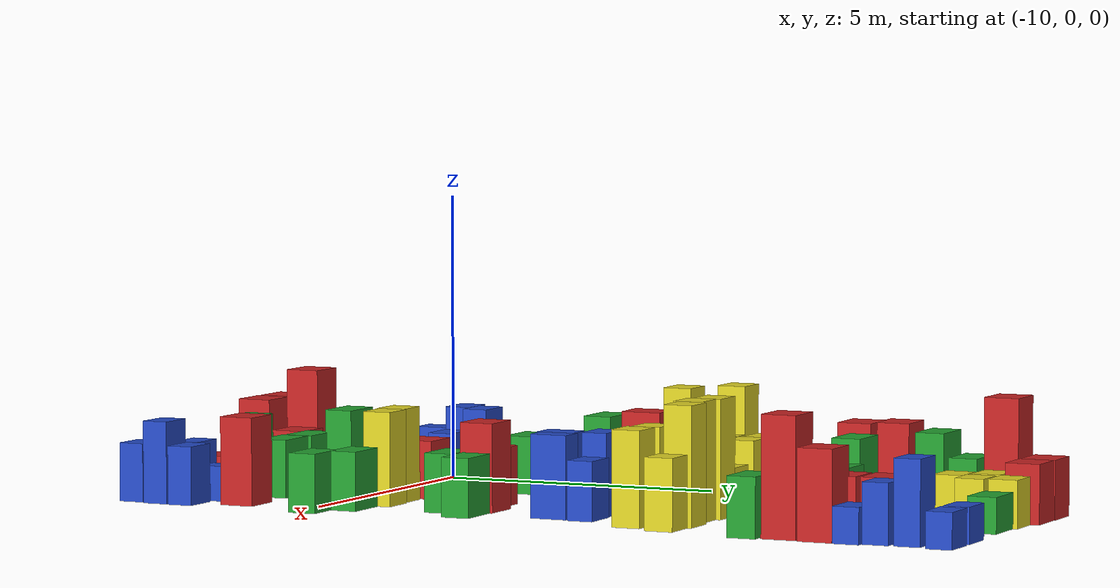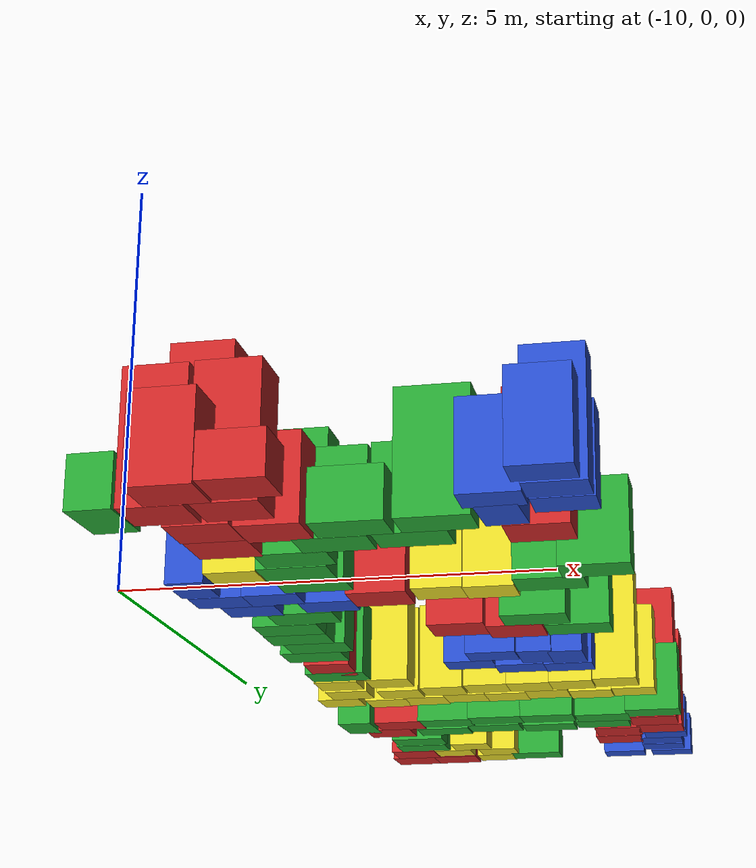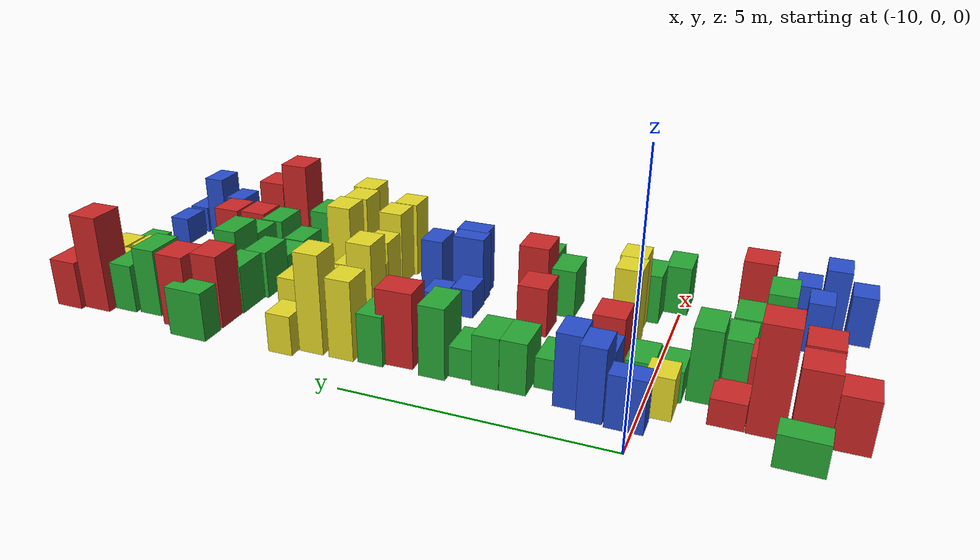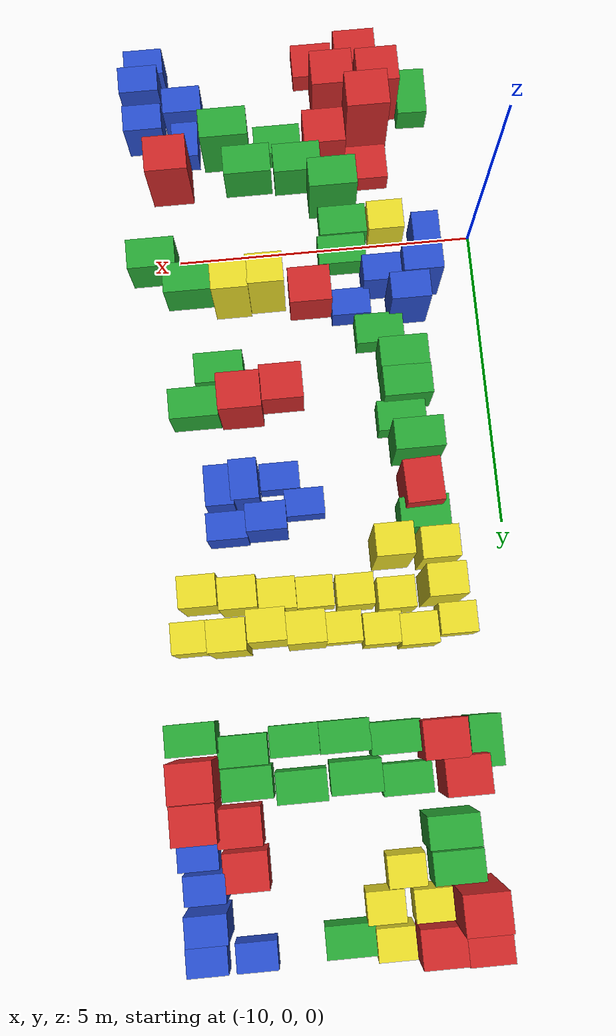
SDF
<?xml version="1.0" encoding="UTF-8"?>
<sdf version="1.4">
  <model name="baggage_group_B">
    <model name="baggage_C_0.8_0">
        <include>
            <uri>model://baggage_C_0.8</uri>
            <pose>-9.02288 6.55759 0.4 0 0 0</pose>
        </include>
    </model>
    <model name="baggage_C_1.2_0">
        <include>
            <uri>model://baggage_C_1.2</uri>
            <pose>-8.35452 6.69065 0.6 0 0 0</pose>
        </include>
    </model>
    <model name="baggage_C_1.2_1">
        <include>
            <uri>model://baggage_C_1.2</uri>
            <pose>-7.78261 6.6353 0.6 0 0 0</pose>
        </include>
    </model>
    <model name="baggage_C_0.8_0">
        <include>
            <uri>model://baggage_C_0.8</uri>
            <pose>-7.18453 6.53717 0.4 0 0 0</pose>
        </include>
    </model>
    <model name="baggage_C_2.0_0">
        <include>
            <uri>model://baggage_C_2.0</uri>
            <pose>-6.59003 6.55894 1.0 0 0 0</pose>
        </include>
    </model>
    <model name="baggage_C_2.0_1">
        <include>
            <uri>model://baggage_C_2.0</uri>
            <pose>-5.99498 6.47714 1.0 0 0 0</pose>
        </include>
    </model>
    <model name="baggage_C_2.0_2">
        <include>
            <uri>model://baggage_C_2.0</uri>
            <pose>-5.38391 6.57727 1.0 0 0 0</pose>
        </include>
    </model>
    <model name="baggage_C_1.2_2">
        <include>
            <uri>model://baggage_C_1.2</uri>
            <pose>-4.77245 6.51191 0.6 0 0 0</pose>
        </include>
    </model>
    <model name="baggage_A_1.5_0">
        <include>
            <uri>model://baggage_A_1.5</uri>
            <pose>-8.61221 -2.63519 0.75 0 0 0</pose>
        </include>
    </model>
    <model name="baggage_A_2.0_0">
        <include>
            <uri>model://baggage_A_2.0</uri>
            <pose>-8.35893 -1.97275 1.0 0 0 0</pose>
        </include>
    </model>
    <model name="baggage_A_1.5_1">
        <include>
            <uri>model://baggage_A_1.5</uri>
            <pose>-7.85129 -2.65398 0.75 0 0 0</pose>
        </include>
    </model>
    <model name="baggage_A_1.0_0">
        <include>
            <uri>model://baggage_A_1.0</uri>
            <pose>-8.31175 -3.25848 0.5 0 0 0</pose>
        </include>
    </model>
    <model name="baggage_A_0.5_0">
        <include>
            <uri>model://baggage_A_0.5</uri>
            <pose>-7.5788 -3.33237 0.25 0 0 0</pose>
        </include>
    </model>
    <model name="baggage_A_1.0_1">
        <include>
            <uri>model://baggage_A_1.0</uri>
            <pose>-7.65243 -1.86558 0.5 0 0 0</pose>
        </include>
    </model>
    <model name="baggage_A_0.5_1">
        <include>
            <uri>model://baggage_A_0.5</uri>
            <pose>-8.34132 -1.36306 0.25 0 0 0</pose>
        </include>
    </model>
    <model name="baggage_D_0.6_0">
        <include>
            <uri>model://baggage_D_0.6</uri>
            <pose>-6.84847 -1.87523 0.3 0 0 0</pose>
        </include>
    </model>
    <model name="baggage_D_1.0_0">
        <include>
            <uri>model://baggage_D_1.0</uri>
            <pose>-7.14607 -1.34989 0.5 0 0 0</pose>
        </include>
    </model>
    <model name="baggage_D_1.0_1">
        <include>
            <uri>model://baggage_D_1.0</uri>
            <pose>-6.29805 -1.38971 0.5 0 0 0</pose>
        </include>
    </model>
    <model name="baggage_D_1.4_0">
        <include>
            <uri>model://baggage_D_1.4</uri>
            <pose>-5.9618 -1.88811 0.7 0 0 0</pose>
        </include>
    </model>
    <model name="baggage_B_1.0_0">
        <include>
            <uri>model://baggage_B_1.0</uri>
            <pose>-4.69259 -3.28387 0.5 0 0 0</pose>
        </include>
    </model>
    <model name="baggage_B_1.4_0">
        <include>
            <uri>model://baggage_B_1.4</uri>
            <pose>-4.62026 -2.77564 0.7 0 0 0</pose>
        </include>
    </model>
    <model name="baggage_B_1.0_1">
        <include>
            <uri>model://baggage_B_1.0</uri>
            <pose>-4.60367 -2.28904 0.5 0 0 0</pose>
        </include>
    </model>
    <model name="baggage_B_0.6_0">
        <include>
            <uri>model://baggage_B_0.6</uri>
            <pose>-5.27287 -2.03398 0.3 0 0 -1.61619</pose>
        </include>
    </model>
    <model name="baggage_B_1.0_2">
        <include>
            <uri>model://baggage_B_1.0</uri>
            <pose>-5.28809 -2.55004 0.5 0 0 0</pose>
        </include>
    </model>
    <model name="baggage_D_1.4_1">
        <include>
            <uri>model://baggage_D_1.4</uri>
            <pose>-7.69797 -0.871649 0.7 0 0 0</pose>
        </include>
    </model>
    <model name="baggage_D_0.6_1">
        <include>
            <uri>model://baggage_D_0.6</uri>
            <pose>-7.83333 -0.326161 0.3 0 0 0</pose>
        </include>
    </model>
    <model name="baggage_D_0.6_0">
        <include>
            <uri>model://baggage_D_0.6</uri>
            <pose>-7.77255 0.192971 0.3 0 0 0</pose>
        </include>
    </model>
    <model name="baggage_C_0.8_1">
        <include>
            <uri>model://baggage_C_0.8</uri>
            <pose>-8.54813 -0.273793 0.4 0 0 0</pose>
        </include>
    </model>
    <model name="baggage_D_0.6_2">
        <include>
            <uri>model://baggage_D_0.6</uri>
            <pose>-9.22897 -2.54763 0.3 0 0 -1.59539</pose>
        </include>
    </model>
    <model name="baggage_B_1.0_3">
        <include>
            <uri>model://baggage_B_1.0</uri>
            <pose>-8.38814 0.709695 0.5 0 0 0</pose>
        </include>
    </model>
    <model name="baggage_B_1.4_1">
        <include>
            <uri>model://baggage_B_1.4</uri>
            <pose>-8.78094 1.19016 0.7 0 0 0</pose>
        </include>
    </model>
    <model name="baggage_D_0.6_1">
        <include>
            <uri>model://baggage_D_0.6</uri>
            <pose>-8.26924 1.62623 0.3 0 0 0</pose>
        </include>
    </model>
    <model name="baggage_C_2.0_3">
        <include>
            <uri>model://baggage_C_2.0</uri>
            <pose>-8.78456 6.03757 1.0 0 0 0</pose>
        </include>
    </model>
    <model name="baggage_C_1.2_3">
        <include>
            <uri>model://baggage_C_1.2</uri>
            <pose>-8.05418 6.10442 0.6 0 0 0</pose>
        </include>
    </model>
    <model name="baggage_C_1.2_4">
        <include>
            <uri>model://baggage_C_1.2</uri>
            <pose>-7.41094 5.9999 0.6 0 0 0</pose>
        </include>
    </model>
    <model name="baggage_C_0.8_2">
        <include>
            <uri>model://baggage_C_0.8</uri>
            <pose>-6.78167 5.93861 0.4 0 0 0</pose>
        </include>
    </model>
    <model name="baggage_C_1.2_5">
        <include>
            <uri>model://baggage_C_1.2</uri>
            <pose>-6.18049 5.94903 0.6 0 0 0</pose>
        </include>
    </model>
    <model name="baggage_C_1.6_0">
        <include>
            <uri>model://baggage_C_1.6</uri>
            <pose>-5.57942 5.91646 0.8 0 0 0</pose>
        </include>
    </model>
    <model name="baggage_C_1.6_1">
        <include>
            <uri>model://baggage_C_1.6</uri>
            <pose>-4.96462 5.84086 0.8 0 0 0</pose>
        </include>
    </model>
    <model name="baggage_B_1.0_4">
        <include>
            <uri>model://baggage_B_1.0</uri>
            <pose>-5.47254 4.78501 0.5 0 0 0</pose>
        </include>
    </model>
    <model name="baggage_B_1.4_2">
        <include>
            <uri>model://baggage_B_1.4</uri>
            <pose>-6.11688 4.74628 0.7 0 0 0</pose>
        </include>
    </model>
    <model name="baggage_B_0.6_0">
        <include>
            <uri>model://baggage_B_0.6</uri>
            <pose>-6.74852 4.44977 0.3 0 0 0</pose>
        </include>
    </model>
    <model name="baggage_B_0.6_1">
        <include>
            <uri>model://baggage_B_0.6</uri>
            <pose>-6.37946 3.9895 0.3 0 0 0</pose>
        </include>
    </model>
    <model name="baggage_B_1.4_3">
        <include>
            <uri>model://baggage_B_1.4</uri>
            <pose>-5.81686 4.12707 0.7 0 0 -1.56607</pose>
        </include>
    </model>
    <model name="baggage_B_1.4_4">
        <include>
            <uri>model://baggage_B_1.4</uri>
            <pose>-5.41926 4.19015 0.7 0 0 -1.57612</pose>
        </include>
    </model>
    <model name="baggage_D_1.0_2">
        <include>
            <uri>model://baggage_D_1.0</uri>
            <pose>-8.60144 2.16363 0.5 0 0 0</pose>
        </include>
    </model>
    <model name="baggage_D_1.0_3">
        <include>
            <uri>model://baggage_D_1.0</uri>
            <pose>-8.61036 2.65779 0.5 0 0 0</pose>
        </include>
    </model>
    <model name="baggage_D_0.6_3">
        <include>
            <uri>model://baggage_D_0.6</uri>
            <pose>-8.48669 3.13899 0.3 0 0 0</pose>
        </include>
    </model>
    <model name="baggage_D_1.4_2">
        <include>
            <uri>model://baggage_D_1.4</uri>
            <pose>-8.66438 3.63423 0.7 0 0 0</pose>
        </include>
    </model>
    <model name="baggage_A_1.5_2">
        <include>
            <uri>model://baggage_A_1.5</uri>
            <pose>-8.64201 4.41438 0.75 0 0 -1.53905</pose>
        </include>
    </model>
    <model name="baggage_D_1.0_4">
        <include>
            <uri>model://baggage_D_1.0</uri>
            <pose>-8.65677 4.83987 0.5 0 0 0</pose>
        </include>
    </model>
    <model name="baggage_C_1.6_2">
        <include>
            <uri>model://baggage_C_1.6</uri>
            <pose>-8.78567 5.41904 0.8 0 0 0</pose>
        </include>
    </model>
    <model name="baggage_A_1.0_2">
        <include>
            <uri>model://baggage_A_1.0</uri>
            <pose>-6.545535 2.495535 0.5 0 0 0</pose>
        </include>
    </model>
    <model name="baggage_A_1.5_3">
        <include>
            <uri>model://baggage_A_1.5</uri>
            <pose>-5.8568 2.70544 0.75 0 0 0</pose>
        </include>
    </model>
    <model name="baggage_D_1.0_5">
        <include>
            <uri>model://baggage_D_1.0</uri>
            <pose>-5.08871 2.71814 0.5 0 0 0</pose>
        </include>
    </model>
    <model name="baggage_D_1.0_6">
        <include>
            <uri>model://baggage_D_1.0</uri>
            <pose>-5.55277 2.16351 0.5 0 0 0</pose>
        </include>
    </model>
    <model name="baggage_B_0.6_2">
        <include>
            <uri>model://baggage_B_0.6</uri>
            <pose>-7.83455 1.12945 0.3 0 0 0</pose>
        </include>
    </model>
    <model name="baggage_A_1.0_3">
        <include>
            <uri>model://baggage_A_1.0</uri>
            <pose>-7.16226 0.892479 0.5 0 0 0</pose>
        </include>
    </model>
    <model name="baggage_C_1.6_3">
        <include>
            <uri>model://baggage_C_1.6</uri>
            <pose>-6.43994 0.759782 0.8 0 0 0</pose>
        </include>
    </model>
    <model name="baggage_C_1.6_4">
        <include>
            <uri>model://baggage_C_1.6</uri>
            <pose>-5.85654 0.80354 0.8 0 0 0</pose>
        </include>
    </model>
    <model name="baggage_D_1.0_8">
        <include>
            <uri>model://baggage_D_1.0</uri>
            <pose>-5.14706 0.580675 0.5 0 0 0</pose>
        </include>
    </model>
    <model name="baggage_D_1.0_9">
        <include>
            <uri>model://baggage_D_1.0</uri>
            <pose>-4.58159 0.114753 0.5 0 0 0</pose>
        </include>
    </model>
    <model name="baggage_A_1.5_4">
        <include>
            <uri>model://baggage_A_1.5</uri>
            <pose>-4.97836 -1.38674 0.75 0 0 0</pose>
        </include>
    </model>
    <model name="baggage_D_1.0_11">
        <include>
            <uri>model://baggage_D_1.0</uri>
            <pose>-4.64026 8.06866 0.5 0 0 0</pose>
        </include>
    </model>
    <model name="baggage_D_0.6_4">
        <include>
            <uri>model://baggage_D_0.6</uri>
            <pose>-5.41472 8.32079 0.3 0 0 0</pose>
        </include>
    </model>
    <model name="baggage_D_0.6_5">
        <include>
            <uri>model://baggage_D_0.6</uri>
            <pose>-6.24346 8.23105 0.3 0 0 0</pose>
        </include>
    </model>
    <model name="baggage_D_1.0_12">
        <include>
            <uri>model://baggage_D_1.0</uri>
            <pose>-7.0361 8.23105 0.5 0 0 0</pose>
        </include>
    </model>
    <model name="baggage_D_1.0_13">
        <include>
            <uri>model://baggage_D_1.0</uri>
            <pose>-7.82515 8.31943 0.5 0 0 0</pose>
        </include>
    </model>
    <model name="baggage_A_1.5_5">
        <include>
            <uri>model://baggage_A_1.5</uri>
            <pose>-8.5559 8.3985 0.75 0 0 0</pose>
        </include>
    </model>
    <model name="baggage_A_1.5_6">
        <include>
            <uri>model://baggage_A_1.5</uri>
            <pose>-8.82889 8.96758 0.75 0 0 0</pose>
        </include>
    </model>
    <model name="baggage_D_0.6_6">
        <include>
            <uri>model://baggage_D_0.6</uri>
            <pose>-7.96903 8.9791 0.3 0 0 0</pose>
        </include>
    </model>
    <model name="baggage_D_1.4_3">
        <include>
            <uri>model://baggage_D_1.4</uri>
            <pose>-7.14621 8.84396 0.7 0 0 0</pose>
        </include>
    </model>
    <model name="baggage_D_1.0_14">
        <include>
            <uri>model://baggage_D_1.0</uri>
            <pose>-6.30407 8.92854 0.5 0 0 0</pose>
        </include>
    </model>
    <model name="baggage_D_1.0_15">
        <include>
            <uri>model://baggage_D_1.0</uri>
            <pose>-5.46339 8.81184 0.5 0 0 0</pose>
        </include>
    </model>
    <model name="baggage_A_2.0_2">
        <include>
            <uri>model://baggage_A_2.0</uri>
            <pose>-4.67828 8.67706 1.0 0 0 0</pose>
        </include>
    </model>
    <model name="baggage_A_1.5_7">
        <include>
            <uri>model://baggage_A_1.5</uri>
            <pose>-4.63443 9.31807 0.75 0 0 0</pose>
        </include>
    </model>
    <model name="baggage_A_1.0_4">
        <include>
            <uri>model://baggage_A_1.0</uri>
            <pose>-5.29254 9.45258 0.5 0 0 0</pose>
        </include>
    </model>
    <model name="baggage_A_1.0_5">
        <include>
            <uri>model://baggage_A_1.0</uri>
            <pose>-5.34102 10.1152 0.5 0 0 0</pose>
        </include>
    </model>
    <model name="baggage_B_0.6_3">
        <include>
            <uri>model://baggage_B_0.6</uri>
            <pose>-4.59122 9.85901 0.3 0 0 0</pose>
        </include>
    </model>
    <model name="baggage_B_1.0_5">
        <include>
            <uri>model://baggage_B_1.0</uri>
            <pose>-4.6956 10.3183 0.5 0 0 0</pose>
        </include>
    </model>
    <model name="baggage_C_2.0_4">
        <include>
            <uri>model://baggage_C_2.0</uri>
            <pose>-8.05261 5.36376 1.0 0 0 0</pose>
        </include>
    </model>
    <model name="baggage_B_1.4_5">
        <include>
            <uri>model://baggage_B_1.4</uri>
            <pose>-9.0308 0.726082 0.7 0 0 0</pose>
        </include>
    </model>
    <model name="baggage_B_1.0_6">
        <include>
            <uri>model://baggage_B_1.0</uri>
            <pose>-9.17888 0.141953 0.5 0 0 1.57146</pose>
        </include>
    </model>
    <model name="baggage_D_1.0_16">
        <include>
            <uri>model://baggage_D_1.0</uri>
            <pose>-9.22088 8.49619 0.5 0 0 1.55481</pose>
        </include>
    </model>
    <model name="baggage_D_1.4_4">
        <include>
            <uri>model://baggage_D_1.4</uri>
            <pose>-8.53846 9.77007 0.7 0 0 0</pose>
        </include>
    </model>
    <model name="baggage_D_1.0_17">
        <include>
            <uri>model://baggage_D_1.0</uri>
            <pose>-8.59111 10.3383 0.5 0 0 0</pose>
        </include>
    </model>
    <model name="baggage_A_2.0_1">
        <include>
            <uri>model://baggage_A_2.0</uri>
            <pose>-8.82731 10.9016 1.0 0 0 0</pose>
        </include>
    </model>
    <model name="baggage_A_1.0_6">
        <include>
            <uri>model://baggage_A_1.0</uri>
            <pose>-8.93609 11.5054 0.5 0 0 0</pose>
        </include>
    </model>
    <model name="baggage_A_1.0_7">
        <include>
            <uri>model://baggage_A_1.0</uri>
            <pose>-8.23678 11.4882 0.5 0 0 0</pose>
        </include>
    </model>
    <model name="baggage_C_0.8_3">
        <include>
            <uri>model://baggage_C_0.8</uri>
            <pose>-8.1651 10.8835 0.4 0 0 0</pose>
        </include>
    </model>
    <model name="baggage_C_0.8_4">
        <include>
            <uri>model://baggage_C_0.8</uri>
            <pose>-7.80064 10.342 0.4 0 0 0</pose>
        </include>
    </model>
    <model name="baggage_C_0.8_5">
        <include>
            <uri>model://baggage_C_0.8</uri>
            <pose>-7.53567 11.3968 0.4 0 0 0</pose>
        </include>
    </model>
    <model name="baggage_D_0.6_7">
        <include>
            <uri>model://baggage_D_0.6</uri>
            <pose>-6.85365 11.3238 0.3 0 0 0</pose>
        </include>
    </model>
    <model name="baggage_C_0.8_6">
        <include>
            <uri>model://baggage_C_0.8</uri>
            <pose>-7.42868 10.8481 0.4 0 0 0</pose>
        </include>
    </model>
    <model name="baggage_B_1.4_6">
        <include>
            <uri>model://baggage_B_1.4</uri>
            <pose>-4.70786 10.8501 0.7 0 0 0</pose>
        </include>
    </model>
    <model name="baggage_B_0.6_1">
        <include>
            <uri>model://baggage_B_0.6</uri>
            <pose>-4.61348 11.4226 0.3 0 0 0</pose>
        </include>
    </model>
    <model name="baggage_B_0.6_4">
        <include>
            <uri>model://baggage_B_0.6</uri>
            <pose>-5.38545 11.4197 0.3 0 0 0</pose>
        </include>
   </model>
  </model>
</sdf>

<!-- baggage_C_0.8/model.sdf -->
<sdf version='1.4'>
  <model name="baggage_C_0.8">
      <static>true</static>
      <link name="link">
         <collision name="collision">
            <geometry>
               <box>
                  <size>0.6 0.5 0.8</size>
               </box>
            </geometry>
         </collision>
         <visual name="visual">
            <cast_shadows>false</cast_shadows>
            <geometry>
               <box>
                  <size>0.6 0.5 0.8</size>
               </box>
            </geometry>
            <material>
               <script>
                  <uri>file://media/materials/scripts/gazebo.material</uri>
                  <name>Gazebo/Yellow</name>
               </script>
            </material>
         </visual>
      </link>
  </model>
</sdf>

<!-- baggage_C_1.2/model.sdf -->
<sdf version='1.4'>
  <model name="baggage_C_1.2">
      <static>true</static>
      <link name="link">
         <collision name="collision">
            <geometry>
               <box>
                  <size>0.6 0.5 1.2</size>
               </box>
            </geometry>
         </collision>
         <visual name="visual">
            <cast_shadows>false</cast_shadows>
            <geometry>
               <box>
                  <size>0.6 0.5 1.2</size>
               </box>
            </geometry>
            <material>
               <script>
                  <uri>file://media/materials/scripts/gazebo.material</uri>
                  <name>Gazebo/Yellow</name>
               </script>
            </material>
         </visual>
      </link>
  </model>
</sdf>

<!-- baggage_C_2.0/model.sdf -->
<sdf version='1.4'>
  <model name="baggage_C_2.0">
      <static>true</static>
      <link name="link">
         <collision name="collision">
            <geometry>
               <box>
                  <size>0.6 0.5 2.0</size>
               </box>
            </geometry>
         </collision>
         <visual name="visual">
            <cast_shadows>false</cast_shadows>
            <geometry>
               <box>
                  <size>0.6 0.5 2.0</size>
               </box>
            </geometry>
            <material>
               <script>
                  <uri>file://media/materials/scripts/gazebo.material</uri>
                  <name>Gazebo/Yellow</name>
               </script>
            </material>
         </visual>
      </link>
  </model>
</sdf>

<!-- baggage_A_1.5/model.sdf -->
<sdf version='1.4'>
  <model name="baggage_A_1.5">
      <static>true</static>
      <link name="link">
         <collision name="collision">
            <geometry>
               <box>
                  <size>0.7 0.6 1.5</size>
               </box>
            </geometry>
         </collision>
         <visual name="visual">
            <cast_shadows>false</cast_shadows>
            <geometry>
               <box>
                  <size>0.7 0.6 1.5</size>
               </box>
            </geometry>
            <material>
               <script>
                  <uri>file://media/materials/scripts/gazebo.material</uri>
                  <name>Gazebo/Red</name>
               </script>
            </material>
         </visual>
      </link>
  </model>
</sdf>

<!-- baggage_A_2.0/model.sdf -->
<sdf version='1.4'>
  <model name="baggage_A_2.0">
      <static>true</static>
      <link name="link">
         <collision name="collision">
            <geometry>
               <box>
                  <size>0.7 0.6 2.0</size>
               </box>
            </geometry>
         </collision>
         <visual name="visual">
            <cast_shadows>false</cast_shadows>
            <geometry>
               <box>
                  <size>0.7 0.6 2.0</size>
               </box>
            </geometry>
            <material>
               <script>
                  <uri>file://media/materials/scripts/gazebo.material</uri>
                  <name>Gazebo/Red</name>
               </script>
            </material>
         </visual>
      </link>
  </model>
</sdf>

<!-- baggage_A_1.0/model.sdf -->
<sdf version='1.4'>
  <model name="baggage_A_1.0">
      <static>true</static>
      <link name="link">
         <collision name="collision">
            <geometry>
               <box>
                  <size>0.7 0.6 1.0</size>
               </box>
            </geometry>
         </collision>
         <visual name="visual">
            <cast_shadows>false</cast_shadows>
            <geometry>
               <box>
                  <size>0.7 0.6 1.0</size>
               </box>
            </geometry>
            <material>
               <script>
                  <uri>file://media/materials/scripts/gazebo.material</uri>
                  <name>Gazebo/Red</name>
               </script>
            </material>
         </visual>
      </link>
  </model>
</sdf>

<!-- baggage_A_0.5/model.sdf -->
<sdf version='1.4'>
  <model name="baggage_A_0.5">
      <static>true</static>
      <link name="link">
         <collision name="collision">
            <geometry>
               <box>
                  <size>0.7 0.6 0.5</size>
               </box>
            </geometry>
         </collision>
         <visual name="visual">
            <cast_shadows>false</cast_shadows>
            <geometry>
               <box>
                  <size>0.7 0.6 0.5</size>
               </box>
            </geometry>
            <material>
               <script>
                  <uri>file://media/materials/scripts/gazebo.material</uri>
                  <name>Gazebo/Red</name>
               </script>
            </material>
         </visual>
      </link>
  </model>
</sdf>

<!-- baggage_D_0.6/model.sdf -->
<sdf version='1.4'>
  <model name="baggage_D_0.6">
      <static>true</static>
      <link name="link">
         <collision name="collision">
            <geometry>
               <box>
                  <size>0.8 0.5 0.6</size>
               </box>
            </geometry>
         </collision>
         <visual name="visual">
            <cast_shadows>false</cast_shadows>
            <geometry>
               <box>
                  <size>0.8 0.5 0.6</size>
               </box>
            </geometry>
            <material>
               <script>
                  <uri>file://media/materials/scripts/gazebo.material</uri>
                  <name>Gazebo/Green</name>
               </script>
            </material>
         </visual>
      </link>
  </model>
</sdf>

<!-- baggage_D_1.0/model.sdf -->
<sdf version='1.4'>
  <model name="baggage_D_1.0">
      <static>true</static>
      <link name="link">
         <collision name="collision">
            <geometry>
               <box>
                  <size>0.8 0.5 1.0</size>
               </box>
            </geometry>
         </collision>
         <visual name="visual">
            <cast_shadows>false</cast_shadows>
            <geometry>
               <box>
                  <size>0.8 0.5 1.0</size>
               </box>
            </geometry>
            <material>
               <script>
                  <uri>file://media/materials/scripts/gazebo.material</uri>
                  <name>Gazebo/Green</name>
               </script>
            </material>
         </visual>
      </link>
  </model>
</sdf>

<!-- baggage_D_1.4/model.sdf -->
<sdf version='1.4'>
  <model name="baggage_D_1.4">
      <static>true</static>
      <link name="link">
         <collision name="collision">
            <geometry>
               <box>
                  <size>0.8 0.5 1.4</size>
               </box>
            </geometry>
         </collision>
         <visual name="visual">
            <cast_shadows>false</cast_shadows>
            <geometry>
               <box>
                  <size>0.8 0.5 1.4</size>
               </box>
            </geometry>
            <material>
               <script>
                  <uri>file://media/materials/scripts/gazebo.material</uri>
                  <name>Gazebo/Green</name>
               </script>
            </material>
         </visual>
      </link>
  </model>
</sdf>

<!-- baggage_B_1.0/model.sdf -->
<sdf version='1.4'>
  <model name="baggage_B_1.0">
      <static>true</static>
      <link name="link">
         <collision name="collision">
            <geometry>
               <box>
                  <size>0.65 0.45 1.0</size>
               </box>
            </geometry>
         </collision>
         <visual name="visual">
            <cast_shadows>false</cast_shadows>
            <geometry>
               <box>
                  <size>0.65 0.45 1.0</size>
               </box>
            </geometry>
            <material>
               <script>
                  <uri>file://media/materials/scripts/gazebo.material</uri>
                  <name>Gazebo/Blue</name>
               </script>
            </material>
         </visual>
      </link>
  </model>
</sdf>

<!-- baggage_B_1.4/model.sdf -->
<sdf version='1.4'>
  <model name="baggage_B_1.4">
      <static>true</static>
      <link name="link">
         <collision name="collision">
            <geometry>
               <box>
                  <size>0.65 0.45 1.4</size>
               </box>
            </geometry>
         </collision>
         <visual name="visual">
            <cast_shadows>false</cast_shadows>
            <geometry>
               <box>
                  <size>0.65 0.45 1.4</size>
               </box>
            </geometry>
            <material>
               <script>
                  <uri>file://media/materials/scripts/gazebo.material</uri>
                  <name>Gazebo/Blue</name>
               </script>
            </material>
         </visual>
      </link>
  </model>
</sdf>

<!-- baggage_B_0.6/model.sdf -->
<sdf version='1.4'>
  <model name="baggage_B_0.6">
      <static>true</static>
      <link name="link">
         <collision name="collision">
            <geometry>
               <box>
                  <size>0.65 0.45 0.6</size>
               </box>
            </geometry>
         </collision>
         <visual name="visual">
            <cast_shadows>false</cast_shadows>
            <geometry>
               <box>
                  <size>0.65 0.45 0.6</size>
               </box>
            </geometry>
            <material>
               <script>
                  <uri>file://media/materials/scripts/gazebo.material</uri>
                  <name>Gazebo/Blue</name>
               </script>
            </material>
         </visual>
      </link>
  </model>
</sdf>

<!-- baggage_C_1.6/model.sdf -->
<sdf version='1.4'>
  <model name="baggage_C_1.6">
      <static>true</static>
      <link name="link">
         <collision name="collision">
            <geometry>
               <box>
                  <size>0.6 0.5 1.6</size>
               </box>
            </geometry>
         </collision>
         <visual name="visual">
            <cast_shadows>false</cast_shadows>
            <geometry>
               <box>
                  <size>0.6 0.5 1.6</size>
               </box>
            </geometry>
            <material>
               <script>
                  <uri>file://media/materials/scripts/gazebo.material</uri>
                  <name>Gazebo/Yellow</name>
               </script>
            </material>
         </visual>
      </link>
  </model>
</sdf>
